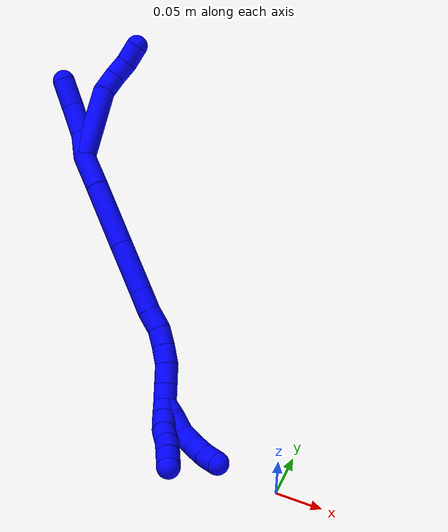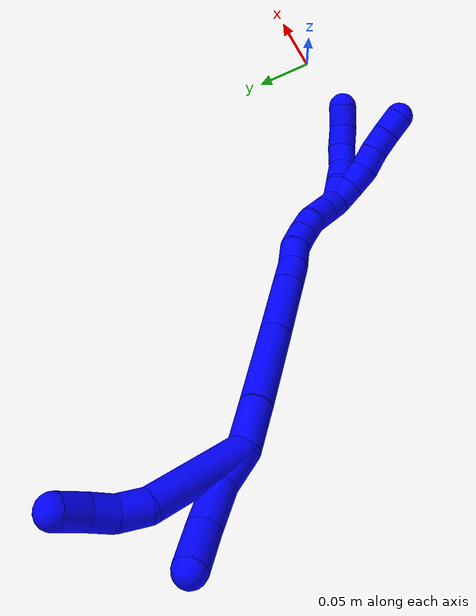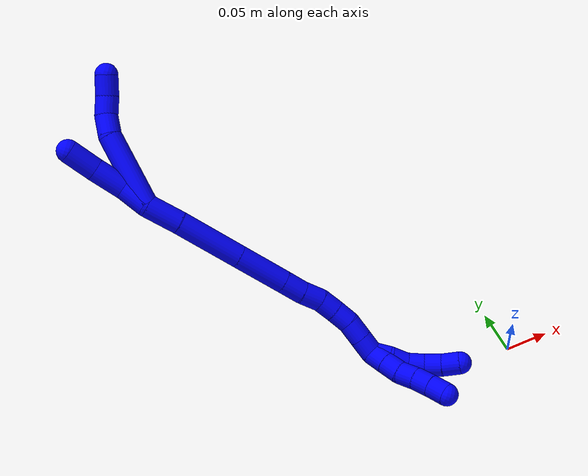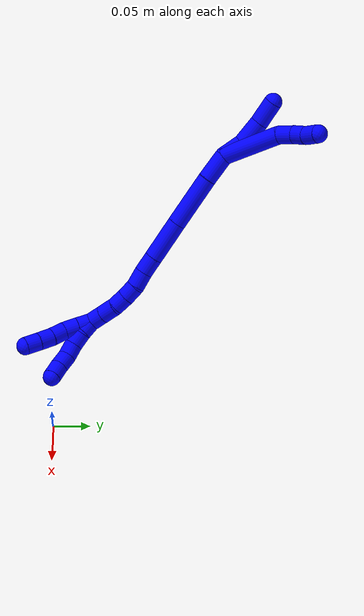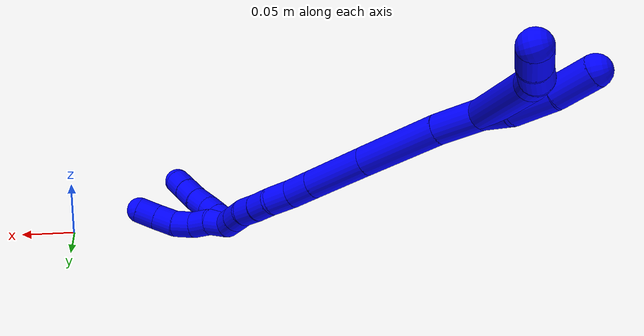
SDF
<sdf version="1.7">
 <world name="default">
  <model name="1">
   <static>0</static>
   <link name="1">
    <collision name="collision-cylinder-e_1_2_8">
     <pose>0.006796 0.0293 0.028825 -0.79357 0.163862 -0.068787</pose>
     <geometry><cylinder><radius>0.0125</radius><length>0.083319</length></cylinder></geometry>
     <surface>
      <friction><ode><mu>1.16</mu><mu2>1.16</mu2><slip1>0</slip1><slip2>0</slip2></ode></friction>
      <contact><ode><kp>1e+06</kp><kd>1</kd><max_vel>0</max_vel><min_depth>0.001</min_depth></ode></contact>
     </surface>
    </collision>
    <visual name="visual-cylinder-e_1_2_8">
     <pose>0.006796 0.0293 0.028825 -0.79357 0.163862 -0.068787</pose>
     <geometry><cylinder><radius>0.0125</radius><length>0.083319</length></cylinder></geometry>
     <material><ambient>0 0 1 1</ambient></material>
    </visual>
    <collision name="collision-cylinder-e_2_8_9">
     <pose>0.015129 0.068826 0.062634 -1.11727 0.134266 -0.084</pose>
     <geometry><cylinder><radius>0.0125</radius><length>0.02296</length></cylinder></geometry>
     <surface>
      <friction><ode><mu>1.16</mu><mu2>1.16</mu2><slip1>0</slip1><slip2>0</slip2></ode></friction>
      <contact><ode><kp>1e+06</kp><kd>1</kd><max_vel>0</max_vel><min_depth>0.001</min_depth></ode></contact>
     </surface>
    </collision>
    <visual name="visual-cylinder-e_2_8_9">
     <pose>0.015129 0.068826 0.062634 -1.11727 0.134266 -0.084</pose>
     <geometry><cylinder><radius>0.0125</radius><length>0.02296</length></cylinder></geometry>
     <material><ambient>0 0 1 1</ambient></material>
    </visual>
    <collision name="collision-cylinder-e_3_9_10">
     <pose>0.02086 0.088248 0.070321 -1.28496 0.412518 -0.310662</pose>
     <geometry><cylinder><radius>0.0125</radius><length>0.020923</length></cylinder></geometry>
     <surface>
      <friction><ode><mu>1.16</mu><mu2>1.16</mu2><slip1>0</slip1><slip2>0</slip2></ode></friction>
      <contact><ode><kp>1e+06</kp><kd>1</kd><max_vel>0</max_vel><min_depth>0.001</min_depth></ode></contact>
     </surface>
    </collision>
    <visual name="visual-cylinder-e_3_9_10">
     <pose>0.02086 0.088248 0.070321 -1.28496 0.412518 -0.310662</pose>
     <geometry><cylinder><radius>0.0125</radius><length>0.020923</length></cylinder></geometry>
     <material><ambient>0 0 1 1</ambient></material>
    </visual>
    <collision name="collision-cylinder-e_4_10_6">
     <pose>0.030871 0.106393 0.077023 -1.15053 0.535555 -0.352126</pose>
     <geometry><cylinder><radius>0.0125</radius><length>0.022798</length></cylinder></geometry>
     <surface>
      <friction><ode><mu>1.16</mu><mu2>1.16</mu2><slip1>0</slip1><slip2>0</slip2></ode></friction>
      <contact><ode><kp>1e+06</kp><kd>1</kd><max_vel>0</max_vel><min_depth>0.001</min_depth></ode></contact>
     </surface>
    </collision>
    <visual name="visual-cylinder-e_4_10_6">
     <pose>0.030871 0.106393 0.077023 -1.15053 0.535555 -0.352126</pose>
     <geometry><cylinder><radius>0.0125</radius><length>0.022798</length></cylinder></geometry>
     <material><ambient>0 0 1 1</ambient></material>
    </visual>
    <collision name="collision-cylinder-e_1_2_11">
     <pose>-0.001161 0.006512 0.013519 -0.448882 -0.077215 0.017636</pose>
     <geometry><cylinder><radius>0.0125</radius><length>0.0301</length></cylinder></geometry>
     <surface>
      <friction><ode><mu>1.16</mu><mu2>1.16</mu2><slip1>0</slip1><slip2>0</slip2></ode></friction>
      <contact><ode><kp>1e+06</kp><kd>1</kd><max_vel>0</max_vel><min_depth>0.001</min_depth></ode></contact>
     </surface>
    </collision>
    <visual name="visual-cylinder-e_1_2_11">
     <pose>-0.001161 0.006512 0.013519 -0.448882 -0.077215 0.017636</pose>
     <geometry><cylinder><radius>0.0125</radius><length>0.0301</length></cylinder></geometry>
     <material><ambient>0 0 1 1</ambient></material>
    </visual>
    <collision name="collision-cylinder-e_2_11_12">
     <pose>-0.000374 0.016996 0.044646 -0.221925 0.107502 -0.011989</pose>
     <geometry><cylinder><radius>0.0125</radius><length>0.036311</length></cylinder></geometry>
     <surface>
      <friction><ode><mu>1.16</mu><mu2>1.16</mu2><slip1>0</slip1><slip2>0</slip2></ode></friction>
      <contact><ode><kp>1e+06</kp><kd>1</kd><max_vel>0</max_vel><min_depth>0.001</min_depth></ode></contact>
     </surface>
    </collision>
    <visual name="visual-cylinder-e_2_11_12">
     <pose>-0.000374 0.016996 0.044646 -0.221925 0.107502 -0.011989</pose>
     <geometry><cylinder><radius>0.0125</radius><length>0.036311</length></cylinder></geometry>
     <material><ambient>0 0 1 1</ambient></material>
    </visual>
    <collision name="collision-cylinder-e_3_12_5">
     <pose>0.005657 0.023934 0.078272 -0.18302 0.245601 -0.022651</pose>
     <geometry><cylinder><radius>0.0125</radius><length>0.033589</length></cylinder></geometry>
     <surface>
      <friction><ode><mu>1.16</mu><mu2>1.16</mu2><slip1>0</slip1><slip2>0</slip2></ode></friction>
      <contact><ode><kp>1e+06</kp><kd>1</kd><max_vel>0</max_vel><min_depth>0.001</min_depth></ode></contact>
     </surface>
    </collision>
    <visual name="visual-cylinder-e_3_12_5">
     <pose>0.005657 0.023934 0.078272 -0.18302 0.245601 -0.022651</pose>
     <geometry><cylinder><radius>0.0125</radius><length>0.033589</length></cylinder></geometry>
     <material><ambient>0 0 1 1</ambient></material>
    </visual>
    <collision name="collision-cylinder-e_1_2_13">
     <pose>-0.001387 -0.002996 -0.019141 2.98633 -0.071446 -0.861341</pose>
     <geometry><cylinder><radius>0.0125</radius><length>0.038848</length></cylinder></geometry>
     <surface>
      <friction><ode><mu>1.16</mu><mu2>1.16</mu2><slip1>0</slip1><slip2>0</slip2></ode></friction>
      <contact><ode><kp>1e+06</kp><kd>1</kd><max_vel>0</max_vel><min_depth>0.001</min_depth></ode></contact>
     </surface>
    </collision>
    <visual name="visual-cylinder-e_1_2_13">
     <pose>-0.001387 -0.002996 -0.019141 2.98633 -0.071446 -0.861341</pose>
     <geometry><cylinder><radius>0.0125</radius><length>0.038848</length></cylinder></geometry>
     <material><ambient>0 0 1 1</ambient></material>
    </visual>
    <collision name="collision-cylinder-e_2_13_14">
     <pose>-0.007996 -0.01137 -0.074268 2.99324 -0.142578 -1.53096</pose>
     <geometry><cylinder><radius>0.0125</radius><length>0.073515</length></cylinder></geometry>
     <surface>
      <friction><ode><mu>1.16</mu><mu2>1.16</mu2><slip1>0</slip1><slip2>0</slip2></ode></friction>
      <contact><ode><kp>1e+06</kp><kd>1</kd><max_vel>0</max_vel><min_depth>0.001</min_depth></ode></contact>
     </surface>
    </collision>
    <visual name="visual-cylinder-e_2_13_14">
     <pose>-0.007996 -0.01137 -0.074268 2.99324 -0.142578 -1.53096</pose>
     <geometry><cylinder><radius>0.0125</radius><length>0.073515</length></cylinder></geometry>
     <material><ambient>0 0 1 1</ambient></material>
    </visual>
    <collision name="collision-cylinder-e_3_14_15">
     <pose>-0.017455 -0.02076 -0.138131 2.99865 -0.149265 -1.61423</pose>
     <geometry><cylinder><radius>0.0125</radius><length>0.056963</length></cylinder></geometry>
     <surface>
      <friction><ode><mu>1.16</mu><mu2>1.16</mu2><slip1>0</slip1><slip2>0</slip2></ode></friction>
      <contact><ode><kp>1e+06</kp><kd>1</kd><max_vel>0</max_vel><min_depth>0.001</min_depth></ode></contact>
     </surface>
    </collision>
    <visual name="visual-cylinder-e_3_14_15">
     <pose>-0.017455 -0.02076 -0.138131 2.99865 -0.149265 -1.61423</pose>
     <geometry><cylinder><radius>0.0125</radius><length>0.056963</length></cylinder></geometry>
     <material><ambient>0 0 1 1</ambient></material>
    </visual>
    <collision name="collision-cylinder-e_4_15_16">
     <pose>-0.023558 -0.026591 -0.178095 2.99224 -0.15163 -1.58596</pose>
     <geometry><cylinder><radius>0.0125</radius><length>0.024729</length></cylinder></geometry>
     <surface>
      <friction><ode><mu>1.16</mu><mu2>1.16</mu2><slip1>0</slip1><slip2>0</slip2></ode></friction>
      <contact><ode><kp>1e+06</kp><kd>1</kd><max_vel>0</max_vel><min_depth>0.001</min_depth></ode></contact>
     </surface>
    </collision>
    <visual name="visual-cylinder-e_4_15_16">
     <pose>-0.023558 -0.026591 -0.178095 2.99224 -0.15163 -1.58596</pose>
     <geometry><cylinder><radius>0.0125</radius><length>0.024729</length></cylinder></geometry>
     <material><ambient>0 0 1 1</ambient></material>
    </visual>
    <collision name="collision-cylinder-e_5_16_17">
     <pose>-0.02656 -0.028856 -0.201535 3.10234 -0.0995 -2.39059</pose>
     <geometry><cylinder><radius>0.0125</radius><length>0.022836</length></cylinder></geometry>
     <surface>
      <friction><ode><mu>1.16</mu><mu2>1.16</mu2><slip1>0</slip1><slip2>0</slip2></ode></friction>
      <contact><ode><kp>1e+06</kp><kd>1</kd><max_vel>0</max_vel><min_depth>0.001</min_depth></ode></contact>
     </surface>
    </collision>
    <visual name="visual-cylinder-e_5_16_17">
     <pose>-0.02656 -0.028856 -0.201535 3.10234 -0.0995 -2.39059</pose>
     <geometry><cylinder><radius>0.0125</radius><length>0.022836</length></cylinder></geometry>
     <material><ambient>0 0 1 1</ambient></material>
    </visual>
    <collision name="collision-cylinder-e_6_17_18">
     <pose>-0.02912 -0.032244 -0.222363 2.84048 -0.142671 -0.880412</pose>
     <geometry><cylinder><radius>0.0125</radius><length>0.020047</length></cylinder></geometry>
     <surface>
      <friction><ode><mu>1.16</mu><mu2>1.16</mu2><slip1>0</slip1><slip2>0</slip2></ode></friction>
      <contact><ode><kp>1e+06</kp><kd>1</kd><max_vel>0</max_vel><min_depth>0.001</min_depth></ode></contact>
     </surface>
    </collision>
    <visual name="visual-cylinder-e_6_17_18">
     <pose>-0.02912 -0.032244 -0.222363 2.84048 -0.142671 -0.880412</pose>
     <geometry><cylinder><radius>0.0125</radius><length>0.020047</length></cylinder></geometry>
     <material><ambient>0 0 1 1</ambient></material>
    </visual>
    <collision name="collision-cylinder-e_7_18_19">
     <pose>-0.031438 -0.038862 -0.24128 2.7704 -0.087965 -0.460492</pose>
     <geometry><cylinder><radius>0.0125</radius><length>0.020341</length></cylinder></geometry>
     <surface>
      <friction><ode><mu>1.16</mu><mu2>1.16</mu2><slip1>0</slip1><slip2>0</slip2></ode></friction>
      <contact><ode><kp>1e+06</kp><kd>1</kd><max_vel>0</max_vel><min_depth>0.001</min_depth></ode></contact>
     </surface>
    </collision>
    <visual name="visual-cylinder-e_7_18_19">
     <pose>-0.031438 -0.038862 -0.24128 2.7704 -0.087965 -0.460492</pose>
     <geometry><cylinder><radius>0.0125</radius><length>0.020341</length></cylinder></geometry>
     <material><ambient>0 0 1 1</ambient></material>
    </visual>
    <collision name="collision-cylinder-e_8_19_20">
     <pose>-0.034573 -0.048385 -0.25963 2.56074 -0.207303 -0.669874</pose>
     <geometry><cylinder><radius>0.0125</radius><length>0.02178</length></cylinder></geometry>
     <surface>
      <friction><ode><mu>1.16</mu><mu2>1.16</mu2><slip1>0</slip1><slip2>0</slip2></ode></friction>
      <contact><ode><kp>1e+06</kp><kd>1</kd><max_vel>0</max_vel><min_depth>0.001</min_depth></ode></contact>
     </surface>
    </collision>
    <visual name="visual-cylinder-e_8_19_20">
     <pose>-0.034573 -0.048385 -0.25963 2.56074 -0.207303 -0.669874</pose>
     <geometry><cylinder><radius>0.0125</radius><length>0.02178</length></cylinder></geometry>
     <material><ambient>0 0 1 1</ambient></material>
    </visual>
    <collision name="collision-cylinder-e_9_20_1">
     <pose>-0.03897 -0.059861 -0.2771 2.55993 -0.20734 -0.669068</pose>
     <geometry><cylinder><radius>0.0125</radius><length>0.020939</length></cylinder></geometry>
     <surface>
      <friction><ode><mu>1.16</mu><mu2>1.16</mu2><slip1>0</slip1><slip2>0</slip2></ode></friction>
      <contact><ode><kp>1e+06</kp><kd>1</kd><max_vel>0</max_vel><min_depth>0.001</min_depth></ode></contact>
     </surface>
    </collision>
    <visual name="visual-cylinder-e_9_20_1">
     <pose>-0.03897 -0.059861 -0.2771 2.55993 -0.20734 -0.669068</pose>
     <geometry><cylinder><radius>0.0125</radius><length>0.020939</length></cylinder></geometry>
     <material><ambient>0 0 1 1</ambient></material>
    </visual>
    <collision name="collision-cylinder-e_1_1_21">
     <pose>-0.036761 -0.070916 -0.292837 2.49425 0.451602 1.20087</pose>
     <geometry><cylinder><radius>0.0125</radius><length>0.02</length></cylinder></geometry>
     <surface>
      <friction><ode><mu>1.16</mu><mu2>1.16</mu2><slip1>0</slip1><slip2>0</slip2></ode></friction>
      <contact><ode><kp>1e+06</kp><kd>1</kd><max_vel>0</max_vel><min_depth>0.001</min_depth></ode></contact>
     </surface>
    </collision>
    <visual name="visual-cylinder-e_1_1_21">
     <pose>-0.036761 -0.070916 -0.292837 2.49425 0.451602 1.20087</pose>
     <geometry><cylinder><radius>0.0125</radius><length>0.02</length></cylinder></geometry>
     <material><ambient>0 0 1 1</ambient></material>
    </visual>
    <collision name="collision-cylinder-e_2_21_22">
     <pose>-0.028115 -0.081631 -0.307342 2.51647 0.442501 1.21614</pose>
     <geometry><cylinder><radius>0.0125</radius><length>0.02</length></cylinder></geometry>
     <surface>
      <friction><ode><mu>1.16</mu><mu2>1.16</mu2><slip1>0</slip1><slip2>0</slip2></ode></friction>
      <contact><ode><kp>1e+06</kp><kd>1</kd><max_vel>0</max_vel><min_depth>0.001</min_depth></ode></contact>
     </surface>
    </collision>
    <visual name="visual-cylinder-e_2_21_22">
     <pose>-0.028115 -0.081631 -0.307342 2.51647 0.442501 1.21614</pose>
     <geometry><cylinder><radius>0.0125</radius><length>0.02</length></cylinder></geometry>
     <material><ambient>0 0 1 1</ambient></material>
    </visual>
    <collision name="collision-cylinder-e_3_22_23">
     <pose>-0.018334 -0.090277 -0.322318 2.72785 0.58226 1.91958</pose>
     <geometry><cylinder><radius>0.0125</radius><length>0.02</length></cylinder></geometry>
     <surface>
      <friction><ode><mu>1.16</mu><mu2>1.16</mu2><slip1>0</slip1><slip2>0</slip2></ode></friction>
      <contact><ode><kp>1e+06</kp><kd>1</kd><max_vel>0</max_vel><min_depth>0.001</min_depth></ode></contact>
     </surface>
    </collision>
    <visual name="visual-cylinder-e_3_22_23">
     <pose>-0.018334 -0.090277 -0.322318 2.72785 0.58226 1.91958</pose>
     <geometry><cylinder><radius>0.0125</radius><length>0.02</length></cylinder></geometry>
     <material><ambient>0 0 1 1</ambient></material>
    </visual>
    <collision name="collision-cylinder-e_4_23_24">
     <pose>-0.007188 -0.097993 -0.336975 2.58539 0.600001 1.6509</pose>
     <geometry><cylinder><radius>0.0125</radius><length>0.02</length></cylinder></geometry>
     <surface>
      <friction><ode><mu>1.16</mu><mu2>1.16</mu2><slip1>0</slip1><slip2>0</slip2></ode></friction>
      <contact><ode><kp>1e+06</kp><kd>1</kd><max_vel>0</max_vel><min_depth>0.001</min_depth></ode></contact>
     </surface>
    </collision>
    <visual name="visual-cylinder-e_4_23_24">
     <pose>-0.007188 -0.097993 -0.336975 2.58539 0.600001 1.6509</pose>
     <geometry><cylinder><radius>0.0125</radius><length>0.02</length></cylinder></geometry>
     <material><ambient>0 0 1 1</ambient></material>
    </visual>
    <collision name="collision-cylinder-e_5_24_4">
     <pose>0.003765 -0.107067 -0.351026 2.55135 0.559366 1.51401</pose>
     <geometry><cylinder><radius>0.0125</radius><length>0.02</length></cylinder></geometry>
     <surface>
      <friction><ode><mu>1.16</mu><mu2>1.16</mu2><slip1>0</slip1><slip2>0</slip2></ode></friction>
      <contact><ode><kp>1e+06</kp><kd>1</kd><max_vel>0</max_vel><min_depth>0.001</min_depth></ode></contact>
     </surface>
    </collision>
    <visual name="visual-cylinder-e_5_24_4">
     <pose>0.003765 -0.107067 -0.351026 2.55135 0.559366 1.51401</pose>
     <geometry><cylinder><radius>0.0125</radius><length>0.02</length></cylinder></geometry>
     <material><ambient>0 0 1 1</ambient></material>
    </visual>
    <collision name="collision-cylinder-e_1_1_25">
     <pose>-0.038177 -0.066326 -0.295179 3.05407 0.299278 2.57625</pose>
     <geometry><cylinder><radius>0.0125</radius><length>0.02</length></cylinder></geometry>
     <surface>
      <friction><ode><mu>1.16</mu><mu2>1.16</mu2><slip1>0</slip1><slip2>0</slip2></ode></friction>
      <contact><ode><kp>1e+06</kp><kd>1</kd><max_vel>0</max_vel><min_depth>0.001</min_depth></ode></contact>
     </surface>
    </collision>
    <visual name="visual-cylinder-e_1_1_25">
     <pose>-0.038177 -0.066326 -0.295179 3.05407 0.299278 2.57625</pose>
     <geometry><cylinder><radius>0.0125</radius><length>0.02</length></cylinder></geometry>
     <material><ambient>0 0 1 1</ambient></material>
    </visual>
    <collision name="collision-cylinder-e_2_25_26">
     <pose>-0.034913 -0.068155 -0.314643 3.04193 0.031596 0.613607</pose>
     <geometry><cylinder><radius>0.0125</radius><length>0.02</length></cylinder></geometry>
     <surface>
      <friction><ode><mu>1.16</mu><mu2>1.16</mu2><slip1>0</slip1><slip2>0</slip2></ode></friction>
      <contact><ode><kp>1e+06</kp><kd>1</kd><max_vel>0</max_vel><min_depth>0.001</min_depth></ode></contact>
     </surface>
    </collision>
    <visual name="visual-cylinder-e_2_25_26">
     <pose>-0.034913 -0.068155 -0.314643 3.04193 0.031596 0.613607</pose>
     <geometry><cylinder><radius>0.0125</radius><length>0.02</length></cylinder></geometry>
     <material><ambient>0 0 1 1</ambient></material>
    </visual>
    <collision name="collision-cylinder-e_3_26_27">
     <pose>-0.031841 -0.067888 -0.334119 -3.00995 0.279131 -2.26414</pose>
     <geometry><cylinder><radius>0.0125</radius><length>0.02</length></cylinder></geometry>
     <surface>
      <friction><ode><mu>1.16</mu><mu2>1.16</mu2><slip1>0</slip1><slip2>0</slip2></ode></friction>
      <contact><ode><kp>1e+06</kp><kd>1</kd><max_vel>0</max_vel><min_depth>0.001</min_depth></ode></contact>
     </surface>
    </collision>
    <visual name="visual-cylinder-e_3_26_27">
     <pose>-0.031841 -0.067888 -0.334119 -3.00995 0.279131 -2.26414</pose>
     <geometry><cylinder><radius>0.0125</radius><length>0.02</length></cylinder></geometry>
     <material><ambient>0 0 1 1</ambient></material>
    </visual>
    <collision name="collision-cylinder-e_4_27_28">
     <pose>-0.023895 -0.065952 -0.352169 -3.0626 0.545825 -2.86107</pose>
     <geometry><cylinder><radius>0.0125</radius><length>0.02</length></cylinder></geometry>
     <surface>
      <friction><ode><mu>1.16</mu><mu2>1.16</mu2><slip1>0</slip1><slip2>0</slip2></ode></friction>
      <contact><ode><kp>1e+06</kp><kd>1</kd><max_vel>0</max_vel><min_depth>0.001</min_depth></ode></contact>
     </surface>
    </collision>
    <visual name="visual-cylinder-e_4_27_28">
     <pose>-0.023895 -0.065952 -0.352169 -3.0626 0.545825 -2.86107</pose>
     <geometry><cylinder><radius>0.0125</radius><length>0.02</length></cylinder></geometry>
     <material><ambient>0 0 1 1</ambient></material>
    </visual>
    <collision name="collision-cylinder-e_5_28_3">
     <pose>-0.012985 -0.063606 -0.368721 -2.93647 0.608747 -2.50835</pose>
     <geometry><cylinder><radius>0.0125</radius><length>0.02</length></cylinder></geometry>
     <surface>
      <friction><ode><mu>1.16</mu><mu2>1.16</mu2><slip1>0</slip1><slip2>0</slip2></ode></friction>
      <contact><ode><kp>1e+06</kp><kd>1</kd><max_vel>0</max_vel><min_depth>0.001</min_depth></ode></contact>
     </surface>
    </collision>
    <visual name="visual-cylinder-e_5_28_3">
     <pose>-0.012985 -0.063606 -0.368721 -2.93647 0.608747 -2.50835</pose>
     <geometry><cylinder><radius>0.0125</radius><length>0.02</length></cylinder></geometry>
     <material><ambient>0 0 1 1</ambient></material>
    </visual>
    <collision name="collision-sphere-3">
     <pose>-0.007267 -0.061935 -0.376752 0 -0 0</pose>
     <geometry><sphere><radius>0.0125</radius></sphere></geometry>
     <surface>
      <friction><ode><mu>1.16</mu><mu2>1.16</mu2><slip1>0</slip1><slip2>0</slip2></ode></friction>
      <contact><ode><kp>1e+06</kp><kd>1</kd><max_vel>0</max_vel><min_depth>0.001</min_depth></ode></contact>
     </surface>
    </collision>
    <visual name="visual-sphere-3">
     <pose>-0.007267 -0.061935 -0.376752 0 -0 0</pose>
     <geometry><sphere><radius>0.0125</radius></sphere></geometry>
     <material><ambient>0 0 1 1</ambient></material>
    </visual>
    <collision name="collision-sphere-28">
     <pose>-0.018704 -0.065277 -0.360689 0 -0 0</pose>
     <geometry><sphere><radius>0.0125</radius></sphere></geometry>
     <surface>
      <friction><ode><mu>1.16</mu><mu2>1.16</mu2><slip1>0</slip1><slip2>0</slip2></ode></friction>
      <contact><ode><kp>1e+06</kp><kd>1</kd><max_vel>0</max_vel><min_depth>0.001</min_depth></ode></contact>
     </surface>
    </collision>
    <visual name="visual-sphere-28">
     <pose>-0.018704 -0.065277 -0.360689 0 -0 0</pose>
     <geometry><sphere><radius>0.0125</radius></sphere></geometry>
     <material><ambient>0 0 1 1</ambient></material>
    </visual>
    <collision name="collision-sphere-27">
     <pose>-0.029086 -0.066626 -0.343648 0 -0 0</pose>
     <geometry><sphere><radius>0.0125</radius></sphere></geometry>
     <surface>
      <friction><ode><mu>1.16</mu><mu2>1.16</mu2><slip1>0</slip1><slip2>0</slip2></ode></friction>
      <contact><ode><kp>1e+06</kp><kd>1</kd><max_vel>0</max_vel><min_depth>0.001</min_depth></ode></contact>
     </surface>
    </collision>
    <visual name="visual-sphere-27">
     <pose>-0.029086 -0.066626 -0.343648 0 -0 0</pose>
     <geometry><sphere><radius>0.0125</radius></sphere></geometry>
     <material><ambient>0 0 1 1</ambient></material>
    </visual>
    <collision name="collision-sphere-26">
     <pose>-0.034597 -0.06915 -0.324589 0 -0 0</pose>
     <geometry><sphere><radius>0.0125</radius></sphere></geometry>
     <surface>
      <friction><ode><mu>1.16</mu><mu2>1.16</mu2><slip1>0</slip1><slip2>0</slip2></ode></friction>
      <contact><ode><kp>1e+06</kp><kd>1</kd><max_vel>0</max_vel><min_depth>0.001</min_depth></ode></contact>
     </surface>
    </collision>
    <visual name="visual-sphere-26">
     <pose>-0.034597 -0.06915 -0.324589 0 -0 0</pose>
     <geometry><sphere><radius>0.0125</radius></sphere></geometry>
     <material><ambient>0 0 1 1</ambient></material>
    </visual>
    <collision name="collision-sphere-25">
     <pose>-0.035228 -0.067161 -0.304698 0 -0 0</pose>
     <geometry><sphere><radius>0.0125</radius></sphere></geometry>
     <surface>
      <friction><ode><mu>1.16</mu><mu2>1.16</mu2><slip1>0</slip1><slip2>0</slip2></ode></friction>
      <contact><ode><kp>1e+06</kp><kd>1</kd><max_vel>0</max_vel><min_depth>0.001</min_depth></ode></contact>
     </surface>
    </collision>
    <visual name="visual-sphere-25">
     <pose>-0.035228 -0.067161 -0.304698 0 -0 0</pose>
     <geometry><sphere><radius>0.0125</radius></sphere></geometry>
     <material><ambient>0 0 1 1</ambient></material>
    </visual>
    <collision name="collision-sphere-4">
     <pose>0.009071 -0.111785 -0.358068 0 -0 0</pose>
     <geometry><sphere><radius>0.0125</radius></sphere></geometry>
     <surface>
      <friction><ode><mu>1.16</mu><mu2>1.16</mu2><slip1>0</slip1><slip2>0</slip2></ode></friction>
      <contact><ode><kp>1e+06</kp><kd>1</kd><max_vel>0</max_vel><min_depth>0.001</min_depth></ode></contact>
     </surface>
    </collision>
    <visual name="visual-sphere-4">
     <pose>0.009071 -0.111785 -0.358068 0 -0 0</pose>
     <geometry><sphere><radius>0.0125</radius></sphere></geometry>
     <material><ambient>0 0 1 1</ambient></material>
    </visual>
    <collision name="collision-sphere-24">
     <pose>-0.001542 -0.10235 -0.343984 0 -0 0</pose>
     <geometry><sphere><radius>0.0125</radius></sphere></geometry>
     <surface>
      <friction><ode><mu>1.16</mu><mu2>1.16</mu2><slip1>0</slip1><slip2>0</slip2></ode></friction>
      <contact><ode><kp>1e+06</kp><kd>1</kd><max_vel>0</max_vel><min_depth>0.001</min_depth></ode></contact>
     </surface>
    </collision>
    <visual name="visual-sphere-24">
     <pose>-0.001542 -0.10235 -0.343984 0 -0 0</pose>
     <geometry><sphere><radius>0.0125</radius></sphere></geometry>
     <material><ambient>0 0 1 1</ambient></material>
    </visual>
    <collision name="collision-sphere-23">
     <pose>-0.012835 -0.093635 -0.329965 0 -0 0</pose>
     <geometry><sphere><radius>0.0125</radius></sphere></geometry>
     <surface>
      <friction><ode><mu>1.16</mu><mu2>1.16</mu2><slip1>0</slip1><slip2>0</slip2></ode></friction>
      <contact><ode><kp>1e+06</kp><kd>1</kd><max_vel>0</max_vel><min_depth>0.001</min_depth></ode></contact>
     </surface>
    </collision>
    <visual name="visual-sphere-23">
     <pose>-0.012835 -0.093635 -0.329965 0 -0 0</pose>
     <geometry><sphere><radius>0.0125</radius></sphere></geometry>
     <material><ambient>0 0 1 1</ambient></material>
    </visual>
    <collision name="collision-sphere-22">
     <pose>-0.023833 -0.086919 -0.31467 0 -0 0</pose>
     <geometry><sphere><radius>0.0125</radius></sphere></geometry>
     <surface>
      <friction><ode><mu>1.16</mu><mu2>1.16</mu2><slip1>0</slip1><slip2>0</slip2></ode></friction>
      <contact><ode><kp>1e+06</kp><kd>1</kd><max_vel>0</max_vel><min_depth>0.001</min_depth></ode></contact>
     </surface>
    </collision>
    <visual name="visual-sphere-22">
     <pose>-0.023833 -0.086919 -0.31467 0 -0 0</pose>
     <geometry><sphere><radius>0.0125</radius></sphere></geometry>
     <material><ambient>0 0 1 1</ambient></material>
    </visual>
    <collision name="collision-sphere-21">
     <pose>-0.032397 -0.076342 -0.300015 0 -0 0</pose>
     <geometry><sphere><radius>0.0125</radius></sphere></geometry>
     <surface>
      <friction><ode><mu>1.16</mu><mu2>1.16</mu2><slip1>0</slip1><slip2>0</slip2></ode></friction>
      <contact><ode><kp>1e+06</kp><kd>1</kd><max_vel>0</max_vel><min_depth>0.001</min_depth></ode></contact>
     </surface>
    </collision>
    <visual name="visual-sphere-21">
     <pose>-0.032397 -0.076342 -0.300015 0 -0 0</pose>
     <geometry><sphere><radius>0.0125</radius></sphere></geometry>
     <material><ambient>0 0 1 1</ambient></material>
    </visual>
    <collision name="collision-sphere-1">
     <pose>-0.041125 -0.06549 -0.28566 0 -0 0</pose>
     <geometry><sphere><radius>0.0125</radius></sphere></geometry>
     <surface>
      <friction><ode><mu>1.16</mu><mu2>1.16</mu2><slip1>0</slip1><slip2>0</slip2></ode></friction>
      <contact><ode><kp>1e+06</kp><kd>1</kd><max_vel>0</max_vel><min_depth>0.001</min_depth></ode></contact>
     </surface>
    </collision>
    <visual name="visual-sphere-1">
     <pose>-0.041125 -0.06549 -0.28566 0 -0 0</pose>
     <geometry><sphere><radius>0.0125</radius></sphere></geometry>
     <material><ambient>0 0 1 1</ambient></material>
    </visual>
    <collision name="collision-sphere-11">
     <pose>-0.002322 0.013023 0.027038 0 -0 0</pose>
     <geometry><sphere><radius>0.0125</radius></sphere></geometry>
     <surface>
      <friction><ode><mu>1.16</mu><mu2>1.16</mu2><slip1>0</slip1><slip2>0</slip2></ode></friction>
      <contact><ode><kp>1e+06</kp><kd>1</kd><max_vel>0</max_vel><min_depth>0.001</min_depth></ode></contact>
     </surface>
    </collision>
    <visual name="visual-sphere-11">
     <pose>-0.002322 0.013023 0.027038 0 -0 0</pose>
     <geometry><sphere><radius>0.0125</radius></sphere></geometry>
     <material><ambient>0 0 1 1</ambient></material>
    </visual>
    <collision name="collision-sphere-6">
     <pose>0.036688 0.115342 0.081022 0 -0 0</pose>
     <geometry><sphere><radius>0.0125</radius></sphere></geometry>
     <surface>
      <friction><ode><mu>1.16</mu><mu2>1.16</mu2><slip1>0</slip1><slip2>0</slip2></ode></friction>
      <contact><ode><kp>1e+06</kp><kd>1</kd><max_vel>0</max_vel><min_depth>0.001</min_depth></ode></contact>
     </surface>
    </collision>
    <visual name="visual-sphere-6">
     <pose>0.036688 0.115342 0.081022 0 -0 0</pose>
     <geometry><sphere><radius>0.0125</radius></sphere></geometry>
     <material><ambient>0 0 1 1</ambient></material>
    </visual>
    <collision name="collision-sphere-10">
     <pose>0.025054 0.097443 0.073023 0 -0 0</pose>
     <geometry><sphere><radius>0.0125</radius></sphere></geometry>
     <surface>
      <friction><ode><mu>1.16</mu><mu2>1.16</mu2><slip1>0</slip1><slip2>0</slip2></ode></friction>
      <contact><ode><kp>1e+06</kp><kd>1</kd><max_vel>0</max_vel><min_depth>0.001</min_depth></ode></contact>
     </surface>
    </collision>
    <visual name="visual-sphere-10">
     <pose>0.025054 0.097443 0.073023 0 -0 0</pose>
     <geometry><sphere><radius>0.0125</radius></sphere></geometry>
     <material><ambient>0 0 1 1</ambient></material>
    </visual>
    <collision name="collision-sphere-9">
     <pose>0.016665 0.079053 0.067619 0 -0 0</pose>
     <geometry><sphere><radius>0.0125</radius></sphere></geometry>
     <surface>
      <friction><ode><mu>1.16</mu><mu2>1.16</mu2><slip1>0</slip1><slip2>0</slip2></ode></friction>
      <contact><ode><kp>1e+06</kp><kd>1</kd><max_vel>0</max_vel><min_depth>0.001</min_depth></ode></contact>
     </surface>
    </collision>
    <visual name="visual-sphere-9">
     <pose>0.016665 0.079053 0.067619 0 -0 0</pose>
     <geometry><sphere><radius>0.0125</radius></sphere></geometry>
     <material><ambient>0 0 1 1</ambient></material>
    </visual>
    <collision name="collision-sphere-2">
     <geometry><sphere><radius>0.0125</radius></sphere></geometry>
     <surface>
      <friction><ode><mu>1.16</mu><mu2>1.16</mu2><slip1>0</slip1><slip2>0</slip2></ode></friction>
      <contact><ode><kp>1e+06</kp><kd>1</kd><max_vel>0</max_vel><min_depth>0.001</min_depth></ode></contact>
     </surface>
    </collision>
    <visual name="visual-sphere-2">
     <geometry><sphere><radius>0.0125</radius></sphere></geometry>
     <material><ambient>0 0 1 1</ambient></material>
    </visual>
    <collision name="collision-sphere-19">
     <pose>-0.032332 -0.042537 -0.250721 0 -0 0</pose>
     <geometry><sphere><radius>0.0125</radius></sphere></geometry>
     <surface>
      <friction><ode><mu>1.16</mu><mu2>1.16</mu2><slip1>0</slip1><slip2>0</slip2></ode></friction>
      <contact><ode><kp>1e+06</kp><kd>1</kd><max_vel>0</max_vel><min_depth>0.001</min_depth></ode></contact>
     </surface>
    </collision>
    <visual name="visual-sphere-19">
     <pose>-0.032332 -0.042537 -0.250721 0 -0 0</pose>
     <geometry><sphere><radius>0.0125</radius></sphere></geometry>
     <material><ambient>0 0 1 1</ambient></material>
    </visual>
    <collision name="collision-sphere-8">
     <pose>0.013592 0.0586 0.05765 0 -0 0</pose>
     <geometry><sphere><radius>0.0125</radius></sphere></geometry>
     <surface>
      <friction><ode><mu>1.16</mu><mu2>1.16</mu2><slip1>0</slip1><slip2>0</slip2></ode></friction>
      <contact><ode><kp>1e+06</kp><kd>1</kd><max_vel>0</max_vel><min_depth>0.001</min_depth></ode></contact>
     </surface>
    </collision>
    <visual name="visual-sphere-8">
     <pose>0.013592 0.0586 0.05765 0 -0 0</pose>
     <geometry><sphere><radius>0.0125</radius></sphere></geometry>
     <material><ambient>0 0 1 1</ambient></material>
    </visual>
    <collision name="collision-sphere-12">
     <pose>0.001574 0.02097 0.062254 0 -0 0</pose>
     <geometry><sphere><radius>0.0125</radius></sphere></geometry>
     <surface>
      <friction><ode><mu>1.16</mu><mu2>1.16</mu2><slip1>0</slip1><slip2>0</slip2></ode></friction>
      <contact><ode><kp>1e+06</kp><kd>1</kd><max_vel>0</max_vel><min_depth>0.001</min_depth></ode></contact>
     </surface>
    </collision>
    <visual name="visual-sphere-12">
     <pose>0.001574 0.02097 0.062254 0 -0 0</pose>
     <geometry><sphere><radius>0.0125</radius></sphere></geometry>
     <material><ambient>0 0 1 1</ambient></material>
    </visual>
    <collision name="collision-sphere-5">
     <pose>0.009741 0.026899 0.09429 0 -0 0</pose>
     <geometry><sphere><radius>0.0125</radius></sphere></geometry>
     <surface>
      <friction><ode><mu>1.16</mu><mu2>1.16</mu2><slip1>0</slip1><slip2>0</slip2></ode></friction>
      <contact><ode><kp>1e+06</kp><kd>1</kd><max_vel>0</max_vel><min_depth>0.001</min_depth></ode></contact>
     </surface>
    </collision>
    <visual name="visual-sphere-5">
     <pose>0.009741 0.026899 0.09429 0 -0 0</pose>
     <geometry><sphere><radius>0.0125</radius></sphere></geometry>
     <material><ambient>0 0 1 1</ambient></material>
    </visual>
    <collision name="collision-sphere-13">
     <pose>-0.002773 -0.005992 -0.038283 0 -0 0</pose>
     <geometry><sphere><radius>0.0125</radius></sphere></geometry>
     <surface>
      <friction><ode><mu>1.16</mu><mu2>1.16</mu2><slip1>0</slip1><slip2>0</slip2></ode></friction>
      <contact><ode><kp>1e+06</kp><kd>1</kd><max_vel>0</max_vel><min_depth>0.001</min_depth></ode></contact>
     </surface>
    </collision>
    <visual name="visual-sphere-13">
     <pose>-0.002773 -0.005992 -0.038283 0 -0 0</pose>
     <geometry><sphere><radius>0.0125</radius></sphere></geometry>
     <material><ambient>0 0 1 1</ambient></material>
    </visual>
    <collision name="collision-sphere-14">
     <pose>-0.013219 -0.016748 -0.110253 0 -0 0</pose>
     <geometry><sphere><radius>0.0125</radius></sphere></geometry>
     <surface>
      <friction><ode><mu>1.16</mu><mu2>1.16</mu2><slip1>0</slip1><slip2>0</slip2></ode></friction>
      <contact><ode><kp>1e+06</kp><kd>1</kd><max_vel>0</max_vel><min_depth>0.001</min_depth></ode></contact>
     </surface>
    </collision>
    <visual name="visual-sphere-14">
     <pose>-0.013219 -0.016748 -0.110253 0 -0 0</pose>
     <geometry><sphere><radius>0.0125</radius></sphere></geometry>
     <material><ambient>0 0 1 1</ambient></material>
    </visual>
    <collision name="collision-sphere-15">
     <pose>-0.021691 -0.024773 -0.166008 0 -0 0</pose>
     <geometry><sphere><radius>0.0125</radius></sphere></geometry>
     <surface>
      <friction><ode><mu>1.16</mu><mu2>1.16</mu2><slip1>0</slip1><slip2>0</slip2></ode></friction>
      <contact><ode><kp>1e+06</kp><kd>1</kd><max_vel>0</max_vel><min_depth>0.001</min_depth></ode></contact>
     </surface>
    </collision>
    <visual name="visual-sphere-15">
     <pose>-0.021691 -0.024773 -0.166008 0 -0 0</pose>
     <geometry><sphere><radius>0.0125</radius></sphere></geometry>
     <material><ambient>0 0 1 1</ambient></material>
    </visual>
    <collision name="collision-sphere-16">
     <pose>-0.025426 -0.02841 -0.190182 0 -0 0</pose>
     <geometry><sphere><radius>0.0125</radius></sphere></geometry>
     <surface>
      <friction><ode><mu>1.16</mu><mu2>1.16</mu2><slip1>0</slip1><slip2>0</slip2></ode></friction>
      <contact><ode><kp>1e+06</kp><kd>1</kd><max_vel>0</max_vel><min_depth>0.001</min_depth></ode></contact>
     </surface>
    </collision>
    <visual name="visual-sphere-16">
     <pose>-0.025426 -0.02841 -0.190182 0 -0 0</pose>
     <geometry><sphere><radius>0.0125</radius></sphere></geometry>
     <material><ambient>0 0 1 1</ambient></material>
    </visual>
    <collision name="collision-sphere-17">
     <pose>-0.027694 -0.029302 -0.212887 0 -0 0</pose>
     <geometry><sphere><radius>0.0125</radius></sphere></geometry>
     <surface>
      <friction><ode><mu>1.16</mu><mu2>1.16</mu2><slip1>0</slip1><slip2>0</slip2></ode></friction>
      <contact><ode><kp>1e+06</kp><kd>1</kd><max_vel>0</max_vel><min_depth>0.001</min_depth></ode></contact>
     </surface>
    </collision>
    <visual name="visual-sphere-17">
     <pose>-0.027694 -0.029302 -0.212887 0 -0 0</pose>
     <geometry><sphere><radius>0.0125</radius></sphere></geometry>
     <material><ambient>0 0 1 1</ambient></material>
    </visual>
    <collision name="collision-sphere-18">
     <pose>-0.030545 -0.035187 -0.231838 0 -0 0</pose>
     <geometry><sphere><radius>0.0125</radius></sphere></geometry>
     <surface>
      <friction><ode><mu>1.16</mu><mu2>1.16</mu2><slip1>0</slip1><slip2>0</slip2></ode></friction>
      <contact><ode><kp>1e+06</kp><kd>1</kd><max_vel>0</max_vel><min_depth>0.001</min_depth></ode></contact>
     </surface>
    </collision>
    <visual name="visual-sphere-18">
     <pose>-0.030545 -0.035187 -0.231838 0 -0 0</pose>
     <geometry><sphere><radius>0.0125</radius></sphere></geometry>
     <material><ambient>0 0 1 1</ambient></material>
    </visual>
    <collision name="collision-sphere-20">
     <pose>-0.036815 -0.054232 -0.268539 0 -0 0</pose>
     <geometry><sphere><radius>0.0125</radius></sphere></geometry>
     <surface>
      <friction><ode><mu>1.16</mu><mu2>1.16</mu2><slip1>0</slip1><slip2>0</slip2></ode></friction>
      <contact><ode><kp>1e+06</kp><kd>1</kd><max_vel>0</max_vel><min_depth>0.001</min_depth></ode></contact>
     </surface>
    </collision>
    <visual name="visual-sphere-20">
     <pose>-0.036815 -0.054232 -0.268539 0 -0 0</pose>
     <geometry><sphere><radius>0.0125</radius></sphere></geometry>
     <material><ambient>0 0 1 1</ambient></material>
    </visual>
    <inertial>
     <pose>-0.010655 -0.017175 -0.130245 0 -0 0</pose>
     <mass>0.75</mass>
     <inertia>
      <ixx>1.7e-05</ixx>
      <ixy>0</ixy>
      <ixz>0</ixz>
      <iyy>-1.1e-05</iyy>
      <iyz>0</iyz>
      <izz>-5.9e-05</izz>
     </inertia>
    </inertial>
   </link>
   <pose>-0.327532 0.227458 0.172294 0.312368 -1.17501 -0.883399</pose>
  </model>
 </world>
</sdf>
